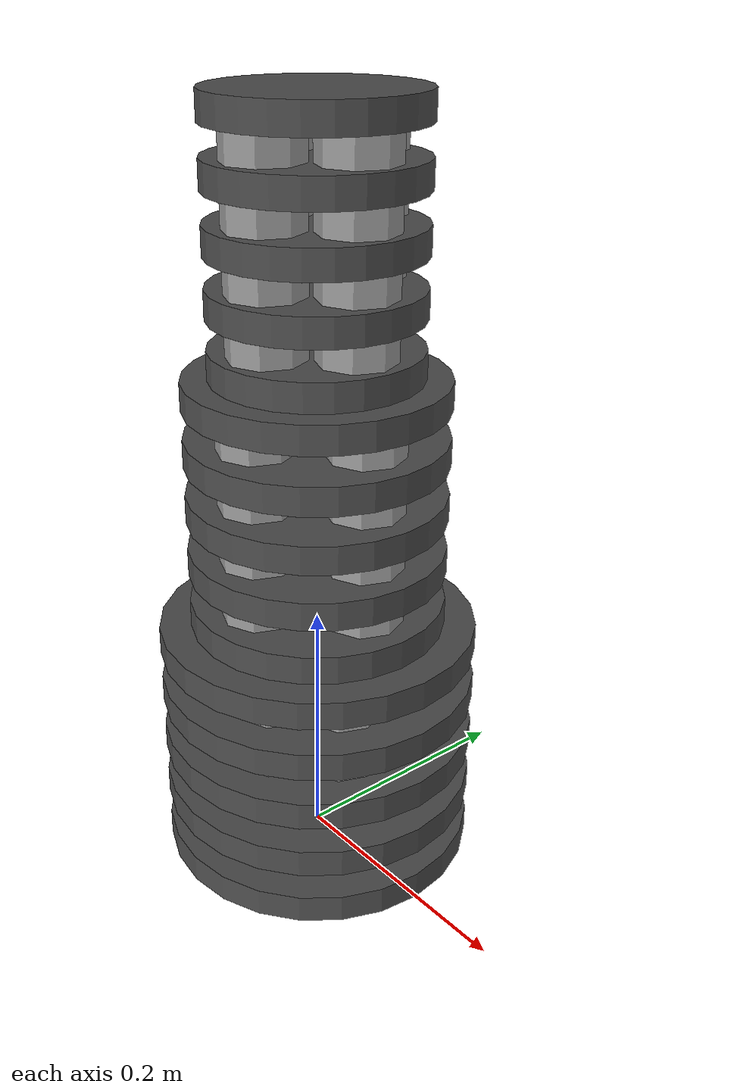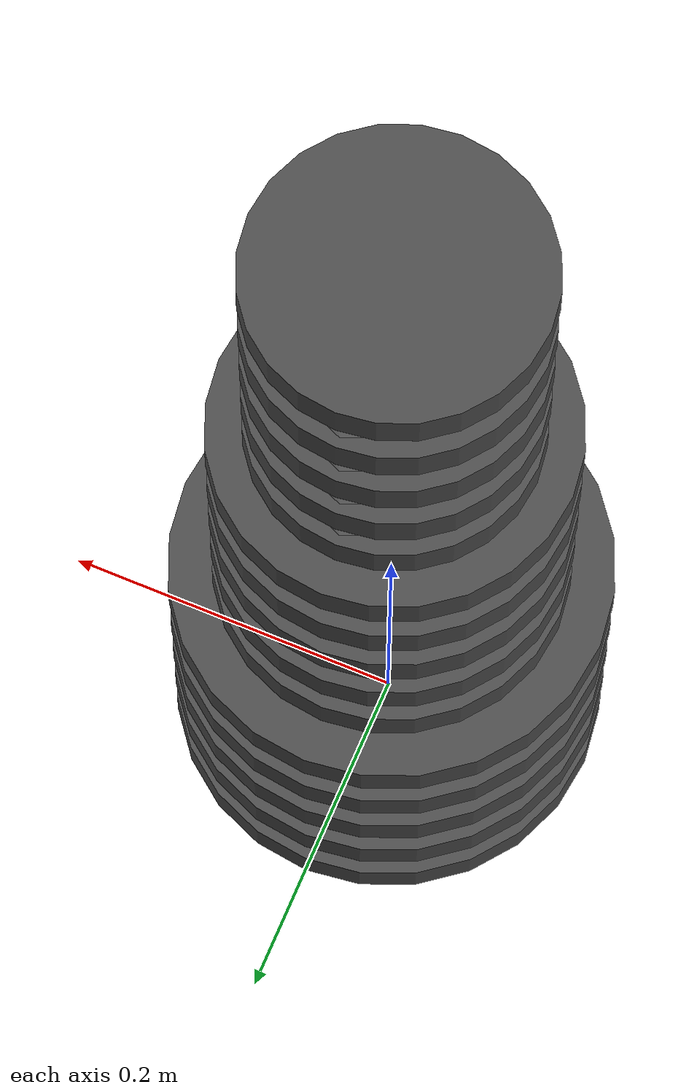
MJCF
<mujoco model="j0">
  <default>
    <default class="/">
      <default class="small_joint">
        <joint group="3" type="hinge" pos="0 0 0.022222222222222223" limited="true" stiffness="135" range="-22 22" damping="10"/>
        <geom type="cylinder" size="0.125 0.011111111111111112" rgba="0.47058823529411764 0.47058823529411764 0.47058823529411764 0.69999999999999996"/>
      </default>
    </default>
    <default class="j1/">
      <default class="j1/small_joint">
        <joint group="3" type="hinge" pos="0 0 0.022222222222222223" limited="true" stiffness="135" range="-22 22" damping="10"/>
        <geom type="cylinder" size="0.10000000000000001 0.011111111111111112" rgba="0.47058823529411764 0.47058823529411764 0.47058823529411764 0.69999999999999996"/>
      </default>
    </default>
    <default class="j1/j2/">
      <default class="j1/j2/small_joint">
        <joint group="3" type="hinge" pos="0 0 0.022222222222222223" limited="true" stiffness="135" range="-22 22" damping="10"/>
        <geom type="cylinder" size="0.080000000000000002 0.011111111111111112" rgba="0.47058823529411764 0.47058823529411764 0.47058823529411764 0.69999999999999996"/>
      </default>
    </default>
  </default>
  <worldbody>
    <body name="j0_body0" childclass="small_joint" pos="0 0 0.011111111111111112" euler="0 0 0">
      <geom name="j0_geom0" group="1" rgba="0.29999999999999999 0.29999999999999999 0.29999999999999999 1"/>
      <inertial pos="0 0 0" mass="0.20000000000000001" diaginertia="0.0007894804526748972 0.0007894804526748972 0.0015625000000000001"/>
      <site name="j0_site0_chamber2" group="2" rgba="0 1 0 1" pos="0.069444444444444448 0 0"/>
      <site name="j0_site0_chamber3" group="3" rgba="0 1 0 1" pos="-0.069444444444444448 0 0"/>
      <site name="j0_site0_chamber0" group="0" rgba="0 1 0 1" pos="0 0.069444444444444448 0"/>
      <site name="j0_site0_chamber1" group="1" rgba="0 1 0 1" pos="0 -0.069444444444444448 0"/>
      <body name="j0_body1" pos="0 0 0.044444444444444446">
        <geom name="j0_geom1" group="1" rgba="0.29999999999999999 0.29999999999999999 0.29999999999999999 1"/>
        <inertial pos="0 0 0" mass="0.20000000000000001" diaginertia="0.0007894804526748972 0.0007894804526748972 0.0015625000000000001"/>
        <site name="j0_site1_chamber2" group="2" rgba="0 1 0 1" pos="0.069444444444444448 0 0"/>
        <site name="j0_site1_chamber3" group="3" rgba="0 1 0 1" pos="-0.069444444444444448 0 0"/>
        <site name="j0_site1_chamber0" group="0" rgba="0 1 0 1" pos="0 0.069444444444444448 0"/>
        <site name="j0_site1_chamber1" group="1" rgba="0 1 0 1" pos="0 -0.069444444444444448 0"/>
        <joint name="j0_jointX0" pos="0 0 -0.022222222222222223" axis="1 0 0"/>
        <joint name="j0_jointY0" pos="0 0 -0.022222222222222223" axis="0 1 0"/>
        <site name="j0_site1_rot" group="4" rgba="1 0 0 1" pos="0 0 -0.022222222222222223"/>
        <body name="j0_body2" pos="0 0 0.044444444444444446">
          <geom name="j0_geom2" group="1" rgba="0.29999999999999999 0.29999999999999999 0.29999999999999999 1"/>
          <inertial pos="0 0 0" mass="0.20000000000000001" diaginertia="0.0007894804526748972 0.0007894804526748972 0.0015625000000000001"/>
          <site name="j0_site2_chamber2" group="2" rgba="0 1 0 1" pos="0.069444444444444448 0 0"/>
          <site name="j0_site2_chamber3" group="3" rgba="0 1 0 1" pos="-0.069444444444444448 0 0"/>
          <site name="j0_site2_chamber0" group="0" rgba="0 1 0 1" pos="0 0.069444444444444448 0"/>
          <site name="j0_site2_chamber1" group="1" rgba="0 1 0 1" pos="0 -0.069444444444444448 0"/>
          <joint name="j0_jointX1" pos="0 0 -0.022222222222222223" axis="1 0 0"/>
          <joint name="j0_jointY1" pos="0 0 -0.022222222222222223" axis="0 1 0"/>
          <site name="j0_site2_rot" group="4" rgba="1 0 0 1" pos="0 0 -0.022222222222222223"/>
          <body name="j0_body3" pos="0 0 0.044444444444444446">
            <geom name="j0_geom3" group="1" rgba="0.29999999999999999 0.29999999999999999 0.29999999999999999 1"/>
            <inertial pos="0 0 0" mass="0.20000000000000001" diaginertia="0.0007894804526748972 0.0007894804526748972 0.0015625000000000001"/>
            <site name="j0_site3_chamber2" group="2" rgba="0 1 0 1" pos="0.069444444444444448 0 0"/>
            <site name="j0_site3_chamber3" group="3" rgba="0 1 0 1" pos="-0.069444444444444448 0 0"/>
            <site name="j0_site3_chamber0" group="0" rgba="0 1 0 1" pos="0 0.069444444444444448 0"/>
            <site name="j0_site3_chamber1" group="1" rgba="0 1 0 1" pos="0 -0.069444444444444448 0"/>
            <joint name="j0_jointX2" pos="0 0 -0.022222222222222223" axis="1 0 0"/>
            <joint name="j0_jointY2" pos="0 0 -0.022222222222222223" axis="0 1 0"/>
            <site name="j0_site3_rot" group="4" rgba="1 0 0 1" pos="0 0 -0.022222222222222223"/>
            <body name="j0_body4" pos="0 0 0.044444444444444446">
              <geom name="j0_geom4" group="1" rgba="0.29999999999999999 0.29999999999999999 0.29999999999999999 1"/>
              <inertial pos="0 0 0" mass="0.20000000000000001" diaginertia="0.0007894804526748972 0.0007894804526748972 0.0015625000000000001"/>
              <site name="j0_site4_chamber2" group="2" rgba="0 1 0 1" pos="0.069444444444444448 0 0"/>
              <site name="j0_site4_chamber3" group="3" rgba="0 1 0 1" pos="-0.069444444444444448 0 0"/>
              <site name="j0_site4_chamber0" group="0" rgba="0 1 0 1" pos="0 0.069444444444444448 0"/>
              <site name="j0_site4_chamber1" group="1" rgba="0 1 0 1" pos="0 -0.069444444444444448 0"/>
              <joint name="j0_jointX3" pos="0 0 -0.022222222222222223" axis="1 0 0"/>
              <joint name="j0_jointY3" pos="0 0 -0.022222222222222223" axis="0 1 0"/>
              <site name="j0_site4_rot" group="4" rgba="1 0 0 1" pos="0 0 -0.022222222222222223"/>
              <site name="j0_site4_chamber0_plus30" group="1" rgba="1 1 1 1" pos="-0.026575238358686786 0.064158300868839363 0"/>
              <site name="j0_site4_chamber0_minus30" group="1" rgba="1 1 1 1" pos="0.026575238358686786 0.064158300868839363 0"/>
              <site name="j0_site4_chamber1_plus30" group="1" rgba="1 1 1 1" pos="0.026575238358686786 -0.064158300868839363 0"/>
              <site name="j0_site4_chamber1_minus30" group="1" rgba="1 1 1 1" pos="-0.026575238358686786 -0.064158300868839363 0"/>
              <site name="j0_site4_chamber2_plus30" group="1" rgba="1 1 1 1" pos="0.064158300868839363 0.026575238358686786 0"/>
              <site name="j0_site4_chamber2_minus30" group="1" rgba="1 1 1 1" pos="0.064158300868839363 -0.026575238358686786 0"/>
              <site name="j0_site4_chamber3_plus30" group="1" rgba="1 1 1 1" pos="-0.064158300868839363 -0.026575238358686786 0"/>
              <site name="j0_site4_chamber3_minus30" group="1" rgba="1 1 1 1" pos="-0.064158300868839363 0.026575238358686786 0"/>
              <site name="j0_connection_site" rgba="1 1 0 1" pos="0 0 0.011111111111111112"/>
              <body pos="0 0 0.011111111111111112" name="j1/">
                <body name="j1/j1_body0" childclass="j1/small_joint" pos="0 0 0.011111111111111112" euler="0 0 0">
                  <geom name="j1/j1_geom0" group="1" rgba="0.29999999999999999 0.29999999999999999 0.29999999999999999 1"/>
                  <inertial pos="0 0 0" mass="0.20000000000000001" diaginertia="0.00050823045267489727 0.00050823045267489727 0.0010000000000000002"/>
                  <site name="j1/j1_site0_chamber2" group="2" rgba="0 1 0 1" pos="0.055555555555555559 0 0"/>
                  <site name="j1/j1_site0_chamber3" group="3" rgba="0 1 0 1" pos="-0.055555555555555559 0 0"/>
                  <site name="j1/j1_site0_chamber0" group="0" rgba="0 1 0 1" pos="0 0.055555555555555559 0"/>
                  <site name="j1/j1_site0_chamber1" group="1" rgba="0 1 0 1" pos="0 -0.055555555555555559 0"/>
                  <body name="j1/j1_body1" pos="0 0 0.044444444444444446">
                    <geom name="j1/j1_geom1" group="1" rgba="0.29999999999999999 0.29999999999999999 0.29999999999999999 1"/>
                    <inertial pos="0 0 0" mass="0.20000000000000001" diaginertia="0.00050823045267489727 0.00050823045267489727 0.0010000000000000002"/>
                    <site name="j1/j1_site1_chamber2" group="2" rgba="0 1 0 1" pos="0.055555555555555559 0 0"/>
                    <site name="j1/j1_site1_chamber3" group="3" rgba="0 1 0 1" pos="-0.055555555555555559 0 0"/>
                    <site name="j1/j1_site1_chamber0" group="0" rgba="0 1 0 1" pos="0 0.055555555555555559 0"/>
                    <site name="j1/j1_site1_chamber1" group="1" rgba="0 1 0 1" pos="0 -0.055555555555555559 0"/>
                    <joint name="j1/j1_jointX0" pos="0 0 -0.022222222222222223" axis="1 0 0"/>
                    <joint name="j1/j1_jointY0" pos="0 0 -0.022222222222222223" axis="0 1 0"/>
                    <site name="j1/j1_site1_rot" group="4" rgba="1 0 0 1" pos="0 0 -0.022222222222222223"/>
                    <body name="j1/j1_body2" pos="0 0 0.044444444444444446">
                      <geom name="j1/j1_geom2" group="1" rgba="0.29999999999999999 0.29999999999999999 0.29999999999999999 1"/>
                      <inertial pos="0 0 0" mass="0.20000000000000001" diaginertia="0.00050823045267489727 0.00050823045267489727 0.0010000000000000002"/>
                      <site name="j1/j1_site2_chamber2" group="2" rgba="0 1 0 1" pos="0.055555555555555559 0 0"/>
                      <site name="j1/j1_site2_chamber3" group="3" rgba="0 1 0 1" pos="-0.055555555555555559 0 0"/>
                      <site name="j1/j1_site2_chamber0" group="0" rgba="0 1 0 1" pos="0 0.055555555555555559 0"/>
                      <site name="j1/j1_site2_chamber1" group="1" rgba="0 1 0 1" pos="0 -0.055555555555555559 0"/>
                      <joint name="j1/j1_jointX1" pos="0 0 -0.022222222222222223" axis="1 0 0"/>
                      <joint name="j1/j1_jointY1" pos="0 0 -0.022222222222222223" axis="0 1 0"/>
                      <site name="j1/j1_site2_rot" group="4" rgba="1 0 0 1" pos="0 0 -0.022222222222222223"/>
                      <body name="j1/j1_body3" pos="0 0 0.044444444444444446">
                        <geom name="j1/j1_geom3" group="1" rgba="0.29999999999999999 0.29999999999999999 0.29999999999999999 1"/>
                        <inertial pos="0 0 0" mass="0.20000000000000001" diaginertia="0.00050823045267489727 0.00050823045267489727 0.0010000000000000002"/>
                        <site name="j1/j1_site3_chamber2" group="2" rgba="0 1 0 1" pos="0.055555555555555559 0 0"/>
                        <site name="j1/j1_site3_chamber3" group="3" rgba="0 1 0 1" pos="-0.055555555555555559 0 0"/>
                        <site name="j1/j1_site3_chamber0" group="0" rgba="0 1 0 1" pos="0 0.055555555555555559 0"/>
                        <site name="j1/j1_site3_chamber1" group="1" rgba="0 1 0 1" pos="0 -0.055555555555555559 0"/>
                        <joint name="j1/j1_jointX2" pos="0 0 -0.022222222222222223" axis="1 0 0"/>
                        <joint name="j1/j1_jointY2" pos="0 0 -0.022222222222222223" axis="0 1 0"/>
                        <site name="j1/j1_site3_rot" group="4" rgba="1 0 0 1" pos="0 0 -0.022222222222222223"/>
                        <body name="j1/j1_body4" pos="0 0 0.044444444444444446">
                          <geom name="j1/j1_geom4" group="1" rgba="0.29999999999999999 0.29999999999999999 0.29999999999999999 1"/>
                          <inertial pos="0 0 0" mass="0.20000000000000001" diaginertia="0.00050823045267489727 0.00050823045267489727 0.0010000000000000002"/>
                          <site name="j1/j1_site4_chamber2" group="2" rgba="0 1 0 1" pos="0.055555555555555559 0 0"/>
                          <site name="j1/j1_site4_chamber3" group="3" rgba="0 1 0 1" pos="-0.055555555555555559 0 0"/>
                          <site name="j1/j1_site4_chamber0" group="0" rgba="0 1 0 1" pos="0 0.055555555555555559 0"/>
                          <site name="j1/j1_site4_chamber1" group="1" rgba="0 1 0 1" pos="0 -0.055555555555555559 0"/>
                          <joint name="j1/j1_jointX3" pos="0 0 -0.022222222222222223" axis="1 0 0"/>
                          <joint name="j1/j1_jointY3" pos="0 0 -0.022222222222222223" axis="0 1 0"/>
                          <site name="j1/j1_site4_rot" group="4" rgba="1 0 0 1" pos="0 0 -0.022222222222222223"/>
                          <site name="j1/j1_connection_site" rgba="1 1 0 1" pos="0 0 0.011111111111111112"/>
                          <body pos="0 0 0.011111111111111112" name="j1/j2/">
                            <body name="j1/j2/j2_body0" childclass="j1/j2/small_joint" pos="0 0 0.011111111111111112" euler="0 0 0">
                              <geom name="j1/j2/j2_geom0" group="1" rgba="0.29999999999999999 0.29999999999999999 0.29999999999999999 1"/>
                              <inertial pos="0 0 0" mass="0.20000000000000001" diaginertia="0.00032823045267489718 0.00032823045267489718 0.00064000000000000005"/>
                              <site name="j1/j2/j2_site0_chamber2" group="2" rgba="0 1 0 1" pos="0.044444444444444446 0 0"/>
                              <site name="j1/j2/j2_site0_chamber3" group="3" rgba="0 1 0 1" pos="-0.044444444444444446 0 0"/>
                              <site name="j1/j2/j2_site0_chamber0" group="0" rgba="0 1 0 1" pos="0 0.044444444444444446 0"/>
                              <site name="j1/j2/j2_site0_chamber1" group="1" rgba="0 1 0 1" pos="0 -0.044444444444444446 0"/>
                              <body name="j1/j2/j2_body1" pos="0 0 0.044444444444444446">
                                <geom name="j1/j2/j2_geom1" group="1" rgba="0.29999999999999999 0.29999999999999999 0.29999999999999999 1"/>
                                <inertial pos="0 0 0" mass="0.20000000000000001" diaginertia="0.00032823045267489718 0.00032823045267489718 0.00064000000000000005"/>
                                <site name="j1/j2/j2_site1_chamber2" group="2" rgba="0 1 0 1" pos="0.044444444444444446 0 0"/>
                                <site name="j1/j2/j2_site1_chamber3" group="3" rgba="0 1 0 1" pos="-0.044444444444444446 0 0"/>
                                <site name="j1/j2/j2_site1_chamber0" group="0" rgba="0 1 0 1" pos="0 0.044444444444444446 0"/>
                                <site name="j1/j2/j2_site1_chamber1" group="1" rgba="0 1 0 1" pos="0 -0.044444444444444446 0"/>
                                <joint name="j1/j2/j2_jointX0" pos="0 0 -0.022222222222222223" axis="1 0 0"/>
                                <joint name="j1/j2/j2_jointY0" pos="0 0 -0.022222222222222223" axis="0 1 0"/>
                                <site name="j1/j2/j2_site1_rot" group="4" rgba="1 0 0 1" pos="0 0 -0.022222222222222223"/>
                                <body name="j1/j2/j2_body2" pos="0 0 0.044444444444444446">
                                  <geom name="j1/j2/j2_geom2" group="1" rgba="0.29999999999999999 0.29999999999999999 0.29999999999999999 1"/>
                                  <inertial pos="0 0 0" mass="0.20000000000000001" diaginertia="0.00032823045267489718 0.00032823045267489718 0.00064000000000000005"/>
                                  <site name="j1/j2/j2_site2_chamber2" group="2" rgba="0 1 0 1" pos="0.044444444444444446 0 0"/>
                                  <site name="j1/j2/j2_site2_chamber3" group="3" rgba="0 1 0 1" pos="-0.044444444444444446 0 0"/>
                                  <site name="j1/j2/j2_site2_chamber0" group="0" rgba="0 1 0 1" pos="0 0.044444444444444446 0"/>
                                  <site name="j1/j2/j2_site2_chamber1" group="1" rgba="0 1 0 1" pos="0 -0.044444444444444446 0"/>
                                  <joint name="j1/j2/j2_jointX1" pos="0 0 -0.022222222222222223" axis="1 0 0"/>
                                  <joint name="j1/j2/j2_jointY1" pos="0 0 -0.022222222222222223" axis="0 1 0"/>
                                  <site name="j1/j2/j2_site2_rot" group="4" rgba="1 0 0 1" pos="0 0 -0.022222222222222223"/>
                                  <body name="j1/j2/j2_body3" pos="0 0 0.044444444444444446">
                                    <geom name="j1/j2/j2_geom3" group="1" rgba="0.29999999999999999 0.29999999999999999 0.29999999999999999 1"/>
                                    <inertial pos="0 0 0" mass="0.20000000000000001" diaginertia="0.00032823045267489718 0.00032823045267489718 0.00064000000000000005"/>
                                    <site name="j1/j2/j2_site3_chamber2" group="2" rgba="0 1 0 1" pos="0.044444444444444446 0 0"/>
                                    <site name="j1/j2/j2_site3_chamber3" group="3" rgba="0 1 0 1" pos="-0.044444444444444446 0 0"/>
                                    <site name="j1/j2/j2_site3_chamber0" group="0" rgba="0 1 0 1" pos="0 0.044444444444444446 0"/>
                                    <site name="j1/j2/j2_site3_chamber1" group="1" rgba="0 1 0 1" pos="0 -0.044444444444444446 0"/>
                                    <joint name="j1/j2/j2_jointX2" pos="0 0 -0.022222222222222223" axis="1 0 0"/>
                                    <joint name="j1/j2/j2_jointY2" pos="0 0 -0.022222222222222223" axis="0 1 0"/>
                                    <site name="j1/j2/j2_site3_rot" group="4" rgba="1 0 0 1" pos="0 0 -0.022222222222222223"/>
                                    <body name="j1/j2/j2_body4" pos="0 0 0.044444444444444446">
                                      <geom name="j1/j2/j2_geom4" group="1" rgba="0.29999999999999999 0.29999999999999999 0.29999999999999999 1"/>
                                      <inertial pos="0 0 0" mass="0.20000000000000001" diaginertia="0.00032823045267489718 0.00032823045267489718 0.00064000000000000005"/>
                                      <site name="j1/j2/j2_site4_chamber2" group="2" rgba="0 1 0 1" pos="0.044444444444444446 0 0"/>
                                      <site name="j1/j2/j2_site4_chamber3" group="3" rgba="0 1 0 1" pos="-0.044444444444444446 0 0"/>
                                      <site name="j1/j2/j2_site4_chamber0" group="0" rgba="0 1 0 1" pos="0 0.044444444444444446 0"/>
                                      <site name="j1/j2/j2_site4_chamber1" group="1" rgba="0 1 0 1" pos="0 -0.044444444444444446 0"/>
                                      <joint name="j1/j2/j2_jointX3" pos="0 0 -0.022222222222222223" axis="1 0 0"/>
                                      <joint name="j1/j2/j2_jointY3" pos="0 0 -0.022222222222222223" axis="0 1 0"/>
                                      <site name="j1/j2/j2_site4_rot" group="4" rgba="1 0 0 1" pos="0 0 -0.022222222222222223"/>
                                    </body>
                                  </body>
                                </body>
                              </body>
                            </body>
                          </body>
                        </body>
                      </body>
                    </body>
                  </body>
                </body>
              </body>
            </body>
            <site name="j0_site3_chamber0_plus30" group="1" rgba="1 1 1 1" pos="-0.026575238358686786 0.064158300868839363 0"/>
            <site name="j0_site3_chamber0_minus30" group="1" rgba="1 1 1 1" pos="0.026575238358686786 0.064158300868839363 0"/>
            <site name="j0_site3_chamber1_plus30" group="1" rgba="1 1 1 1" pos="0.026575238358686786 -0.064158300868839363 0"/>
            <site name="j0_site3_chamber1_minus30" group="1" rgba="1 1 1 1" pos="-0.026575238358686786 -0.064158300868839363 0"/>
            <site name="j0_site3_chamber2_plus30" group="1" rgba="1 1 1 1" pos="0.064158300868839363 0.026575238358686786 0"/>
            <site name="j0_site3_chamber2_minus30" group="1" rgba="1 1 1 1" pos="0.064158300868839363 -0.026575238358686786 0"/>
            <site name="j0_site3_chamber3_plus30" group="1" rgba="1 1 1 1" pos="-0.064158300868839363 -0.026575238358686786 0"/>
            <site name="j0_site3_chamber3_minus30" group="1" rgba="1 1 1 1" pos="-0.064158300868839363 0.026575238358686786 0"/>
          </body>
          <site name="j0_site2_chamber0_plus30" group="1" rgba="1 1 1 1" pos="-0.026575238358686786 0.064158300868839363 0"/>
          <site name="j0_site2_chamber0_minus30" group="1" rgba="1 1 1 1" pos="0.026575238358686786 0.064158300868839363 0"/>
          <site name="j0_site2_chamber1_plus30" group="1" rgba="1 1 1 1" pos="0.026575238358686786 -0.064158300868839363 0"/>
          <site name="j0_site2_chamber1_minus30" group="1" rgba="1 1 1 1" pos="-0.026575238358686786 -0.064158300868839363 0"/>
          <site name="j0_site2_chamber2_plus30" group="1" rgba="1 1 1 1" pos="0.064158300868839363 0.026575238358686786 0"/>
          <site name="j0_site2_chamber2_minus30" group="1" rgba="1 1 1 1" pos="0.064158300868839363 -0.026575238358686786 0"/>
          <site name="j0_site2_chamber3_plus30" group="1" rgba="1 1 1 1" pos="-0.064158300868839363 -0.026575238358686786 0"/>
          <site name="j0_site2_chamber3_minus30" group="1" rgba="1 1 1 1" pos="-0.064158300868839363 0.026575238358686786 0"/>
        </body>
        <site name="j0_site1_chamber0_plus30" group="1" rgba="1 1 1 1" pos="-0.026575238358686786 0.064158300868839363 0"/>
        <site name="j0_site1_chamber0_minus30" group="1" rgba="1 1 1 1" pos="0.026575238358686786 0.064158300868839363 0"/>
        <site name="j0_site1_chamber1_plus30" group="1" rgba="1 1 1 1" pos="0.026575238358686786 -0.064158300868839363 0"/>
        <site name="j0_site1_chamber1_minus30" group="1" rgba="1 1 1 1" pos="-0.026575238358686786 -0.064158300868839363 0"/>
        <site name="j0_site1_chamber2_plus30" group="1" rgba="1 1 1 1" pos="0.064158300868839363 0.026575238358686786 0"/>
        <site name="j0_site1_chamber2_minus30" group="1" rgba="1 1 1 1" pos="0.064158300868839363 -0.026575238358686786 0"/>
        <site name="j0_site1_chamber3_plus30" group="1" rgba="1 1 1 1" pos="-0.064158300868839363 -0.026575238358686786 0"/>
        <site name="j0_site1_chamber3_minus30" group="1" rgba="1 1 1 1" pos="-0.064158300868839363 0.026575238358686786 0"/>
      </body>
      <site name="j0_site0_chamber0_plus30" group="1" rgba="1 1 1 1" pos="-0.026575238358686786 0.064158300868839363 0"/>
      <site name="j0_site0_chamber0_minus30" group="1" rgba="1 1 1 1" pos="0.026575238358686786 0.064158300868839363 0"/>
      <site name="j0_site0_chamber1_plus30" group="1" rgba="1 1 1 1" pos="0.026575238358686786 -0.064158300868839363 0"/>
      <site name="j0_site0_chamber1_minus30" group="1" rgba="1 1 1 1" pos="-0.026575238358686786 -0.064158300868839363 0"/>
      <site name="j0_site0_chamber2_plus30" group="1" rgba="1 1 1 1" pos="0.064158300868839363 0.026575238358686786 0"/>
      <site name="j0_site0_chamber2_minus30" group="1" rgba="1 1 1 1" pos="0.064158300868839363 -0.026575238358686786 0"/>
      <site name="j0_site0_chamber3_plus30" group="1" rgba="1 1 1 1" pos="-0.064158300868839363 -0.026575238358686786 0"/>
      <site name="j0_site0_chamber3_minus30" group="1" rgba="1 1 1 1" pos="-0.064158300868839363 0.026575238358686786 0"/>
    </body>
  </worldbody>
  <tendon>
    <spatial name="j0_tendon0" class="/" width="0.029999999999999999" rgba="0.59999999999999998 0.59999999999999998 0.59999999999999998 0">
      <site site="j0_site0_chamber0"/>
      <site site="j0_site1_chamber0"/>
      <site site="j0_site2_chamber0"/>
      <site site="j0_site3_chamber0"/>
      <site site="j0_site4_chamber0"/>
    </spatial>
    <spatial name="j0_tendon1" class="/" width="0.029999999999999999" rgba="0.59999999999999998 0.59999999999999998 0.59999999999999998 0">
      <site site="j0_site0_chamber1"/>
      <site site="j0_site1_chamber1"/>
      <site site="j0_site2_chamber1"/>
      <site site="j0_site3_chamber1"/>
      <site site="j0_site4_chamber1"/>
    </spatial>
    <spatial name="j0_tendon2" class="/" width="0.029999999999999999" rgba="0.59999999999999998 0.59999999999999998 0.59999999999999998 0">
      <site site="j0_site0_chamber2"/>
      <site site="j0_site1_chamber2"/>
      <site site="j0_site2_chamber2"/>
      <site site="j0_site3_chamber2"/>
      <site site="j0_site4_chamber2"/>
    </spatial>
    <spatial name="j0_tendon3" class="/" width="0.029999999999999999" rgba="0.59999999999999998 0.59999999999999998 0.59999999999999998 0">
      <site site="j0_site0_chamber3"/>
      <site site="j0_site1_chamber3"/>
      <site site="j0_site2_chamber3"/>
      <site site="j0_site3_chamber3"/>
      <site site="j0_site4_chamber3"/>
    </spatial>
    <spatial name="j0_tendon0_plus30" class="/" width="0.029999999999999999" rgba="0.59999999999999998 0.59999999999999998 0.59999999999999998 1">
      <site site="j0_site0_chamber0_plus30"/>
      <site site="j0_site1_chamber0_plus30"/>
      <site site="j0_site2_chamber0_plus30"/>
      <site site="j0_site3_chamber0_plus30"/>
      <site site="j0_site4_chamber0_plus30"/>
    </spatial>
    <spatial name="j0_tendon0_minus30" class="/" width="0.029999999999999999" rgba="0.59999999999999998 0.59999999999999998 0.59999999999999998 1">
      <site site="j0_site0_chamber0_minus30"/>
      <site site="j0_site1_chamber0_minus30"/>
      <site site="j0_site2_chamber0_minus30"/>
      <site site="j0_site3_chamber0_minus30"/>
      <site site="j0_site4_chamber0_minus30"/>
    </spatial>
    <spatial name="j0_tendon1_plus30" class="/" width="0.029999999999999999" rgba="0.59999999999999998 0.59999999999999998 0.59999999999999998 1">
      <site site="j0_site0_chamber1_plus30"/>
      <site site="j0_site1_chamber1_plus30"/>
      <site site="j0_site2_chamber1_plus30"/>
      <site site="j0_site3_chamber1_plus30"/>
      <site site="j0_site4_chamber1_plus30"/>
    </spatial>
    <spatial name="j0_tendon1_minus30" class="/" width="0.029999999999999999" rgba="0.59999999999999998 0.59999999999999998 0.59999999999999998 1">
      <site site="j0_site0_chamber1_minus30"/>
      <site site="j0_site1_chamber1_minus30"/>
      <site site="j0_site2_chamber1_minus30"/>
      <site site="j0_site3_chamber1_minus30"/>
      <site site="j0_site4_chamber1_minus30"/>
    </spatial>
    <spatial name="j0_tendon2_plus30" class="/" width="0.029999999999999999" rgba="0.59999999999999998 0.59999999999999998 0.59999999999999998 1">
      <site site="j0_site0_chamber2_plus30"/>
      <site site="j0_site1_chamber2_plus30"/>
      <site site="j0_site2_chamber2_plus30"/>
      <site site="j0_site3_chamber2_plus30"/>
      <site site="j0_site4_chamber2_plus30"/>
    </spatial>
    <spatial name="j0_tendon2_minus30" class="/" width="0.029999999999999999" rgba="0.59999999999999998 0.59999999999999998 0.59999999999999998 1">
      <site site="j0_site0_chamber2_minus30"/>
      <site site="j0_site1_chamber2_minus30"/>
      <site site="j0_site2_chamber2_minus30"/>
      <site site="j0_site3_chamber2_minus30"/>
      <site site="j0_site4_chamber2_minus30"/>
    </spatial>
    <spatial name="j0_tendon3_plus30" class="/" width="0.029999999999999999" rgba="0.59999999999999998 0.59999999999999998 0.59999999999999998 1">
      <site site="j0_site0_chamber3_plus30"/>
      <site site="j0_site1_chamber3_plus30"/>
      <site site="j0_site2_chamber3_plus30"/>
      <site site="j0_site3_chamber3_plus30"/>
      <site site="j0_site4_chamber3_plus30"/>
    </spatial>
    <spatial name="j0_tendon3_minus30" class="/" width="0.029999999999999999" rgba="0.59999999999999998 0.59999999999999998 0.59999999999999998 1">
      <site site="j0_site0_chamber3_minus30"/>
      <site site="j0_site1_chamber3_minus30"/>
      <site site="j0_site2_chamber3_minus30"/>
      <site site="j0_site3_chamber3_minus30"/>
      <site site="j0_site4_chamber3_minus30"/>
    </spatial>
    <spatial name="j1/j1_tendon0" class="j1/" width="0.029999999999999999" rgba="0.59999999999999998 0.59999999999999998 0.59999999999999998 1">
      <site site="j1/j1_site0_chamber0"/>
      <site site="j1/j1_site1_chamber0"/>
      <site site="j1/j1_site2_chamber0"/>
      <site site="j1/j1_site3_chamber0"/>
      <site site="j1/j1_site4_chamber0"/>
    </spatial>
    <spatial name="j1/j1_tendon1" class="j1/" width="0.029999999999999999" rgba="0.59999999999999998 0.59999999999999998 0.59999999999999998 1">
      <site site="j1/j1_site0_chamber1"/>
      <site site="j1/j1_site1_chamber1"/>
      <site site="j1/j1_site2_chamber1"/>
      <site site="j1/j1_site3_chamber1"/>
      <site site="j1/j1_site4_chamber1"/>
    </spatial>
    <spatial name="j1/j1_tendon2" class="j1/" width="0.029999999999999999" rgba="0.59999999999999998 0.59999999999999998 0.59999999999999998 1">
      <site site="j1/j1_site0_chamber2"/>
      <site site="j1/j1_site1_chamber2"/>
      <site site="j1/j1_site2_chamber2"/>
      <site site="j1/j1_site3_chamber2"/>
      <site site="j1/j1_site4_chamber2"/>
    </spatial>
    <spatial name="j1/j1_tendon3" class="j1/" width="0.029999999999999999" rgba="0.59999999999999998 0.59999999999999998 0.59999999999999998 1">
      <site site="j1/j1_site0_chamber3"/>
      <site site="j1/j1_site1_chamber3"/>
      <site site="j1/j1_site2_chamber3"/>
      <site site="j1/j1_site3_chamber3"/>
      <site site="j1/j1_site4_chamber3"/>
    </spatial>
    <spatial name="j1/j2/j2_tendon0" class="j1/j2/" width="0.029999999999999999" rgba="0.59999999999999998 0.59999999999999998 0.59999999999999998 1">
      <site site="j1/j2/j2_site0_chamber0"/>
      <site site="j1/j2/j2_site1_chamber0"/>
      <site site="j1/j2/j2_site2_chamber0"/>
      <site site="j1/j2/j2_site3_chamber0"/>
      <site site="j1/j2/j2_site4_chamber0"/>
    </spatial>
    <spatial name="j1/j2/j2_tendon1" class="j1/j2/" width="0.029999999999999999" rgba="0.59999999999999998 0.59999999999999998 0.59999999999999998 1">
      <site site="j1/j2/j2_site0_chamber1"/>
      <site site="j1/j2/j2_site1_chamber1"/>
      <site site="j1/j2/j2_site2_chamber1"/>
      <site site="j1/j2/j2_site3_chamber1"/>
      <site site="j1/j2/j2_site4_chamber1"/>
    </spatial>
    <spatial name="j1/j2/j2_tendon2" class="j1/j2/" width="0.029999999999999999" rgba="0.59999999999999998 0.59999999999999998 0.59999999999999998 1">
      <site site="j1/j2/j2_site0_chamber2"/>
      <site site="j1/j2/j2_site1_chamber2"/>
      <site site="j1/j2/j2_site2_chamber2"/>
      <site site="j1/j2/j2_site3_chamber2"/>
      <site site="j1/j2/j2_site4_chamber2"/>
    </spatial>
    <spatial name="j1/j2/j2_tendon3" class="j1/j2/" width="0.029999999999999999" rgba="0.59999999999999998 0.59999999999999998 0.59999999999999998 1">
      <site site="j1/j2/j2_site0_chamber3"/>
      <site site="j1/j2/j2_site1_chamber3"/>
      <site site="j1/j2/j2_site2_chamber3"/>
      <site site="j1/j2/j2_site3_chamber3"/>
      <site site="j1/j2/j2_site4_chamber3"/>
    </spatial>
  </tendon>
  <actuator>
    <cylinder name="j0_p0" class="/" ctrllimited="true" ctrlrange="0 1000" gear="500" tendon="j0_tendon0" timeconst="0.20000000000000001" diameter="0.050000000000000003"/>
    <cylinder name="j0_p1" class="/" ctrllimited="true" ctrlrange="0 1000" gear="500" tendon="j0_tendon1" timeconst="0.20000000000000001" diameter="0.050000000000000003"/>
    <cylinder name="j0_p2" class="/" ctrllimited="true" ctrlrange="0 1000" gear="500" tendon="j0_tendon2" timeconst="0.20000000000000001" diameter="0.050000000000000003"/>
    <cylinder name="j0_p3" class="/" ctrllimited="true" ctrlrange="0 1000" gear="500" tendon="j0_tendon3" timeconst="0.20000000000000001" diameter="0.050000000000000003"/>
    <cylinder name="j1/j1_p0" class="j1/" ctrllimited="true" ctrlrange="0 1000" gear="500" tendon="j1/j1_tendon0" timeconst="0.20000000000000001" diameter="0.050000000000000003"/>
    <cylinder name="j1/j1_p1" class="j1/" ctrllimited="true" ctrlrange="0 1000" gear="500" tendon="j1/j1_tendon1" timeconst="0.20000000000000001" diameter="0.050000000000000003"/>
    <cylinder name="j1/j1_p2" class="j1/" ctrllimited="true" ctrlrange="0 1000" gear="500" tendon="j1/j1_tendon2" timeconst="0.20000000000000001" diameter="0.050000000000000003"/>
    <cylinder name="j1/j1_p3" class="j1/" ctrllimited="true" ctrlrange="0 1000" gear="500" tendon="j1/j1_tendon3" timeconst="0.20000000000000001" diameter="0.050000000000000003"/>
    <cylinder name="j1/j2/j2_p0" class="j1/j2/" ctrllimited="true" ctrlrange="0 1000" gear="500" tendon="j1/j2/j2_tendon0" timeconst="0.20000000000000001" diameter="0.050000000000000003"/>
    <cylinder name="j1/j2/j2_p1" class="j1/j2/" ctrllimited="true" ctrlrange="0 1000" gear="500" tendon="j1/j2/j2_tendon1" timeconst="0.20000000000000001" diameter="0.050000000000000003"/>
    <cylinder name="j1/j2/j2_p2" class="j1/j2/" ctrllimited="true" ctrlrange="0 1000" gear="500" tendon="j1/j2/j2_tendon2" timeconst="0.20000000000000001" diameter="0.050000000000000003"/>
    <cylinder name="j1/j2/j2_p3" class="j1/j2/" ctrllimited="true" ctrlrange="0 1000" gear="500" tendon="j1/j2/j2_tendon3" timeconst="0.20000000000000001" diameter="0.050000000000000003"/>
  </actuator>
</mujoco>
